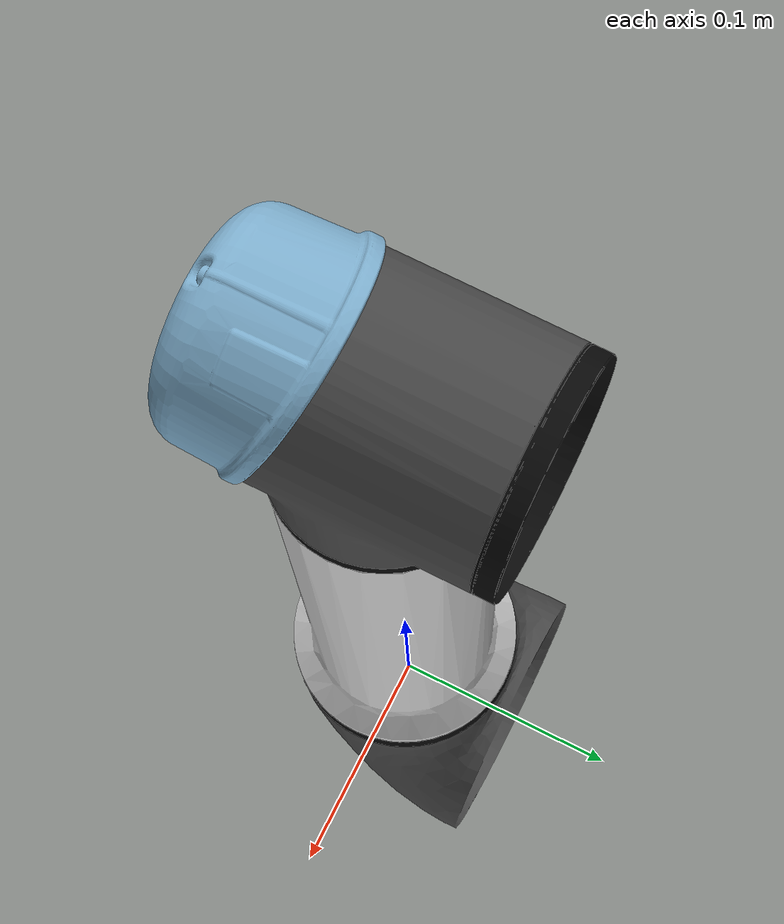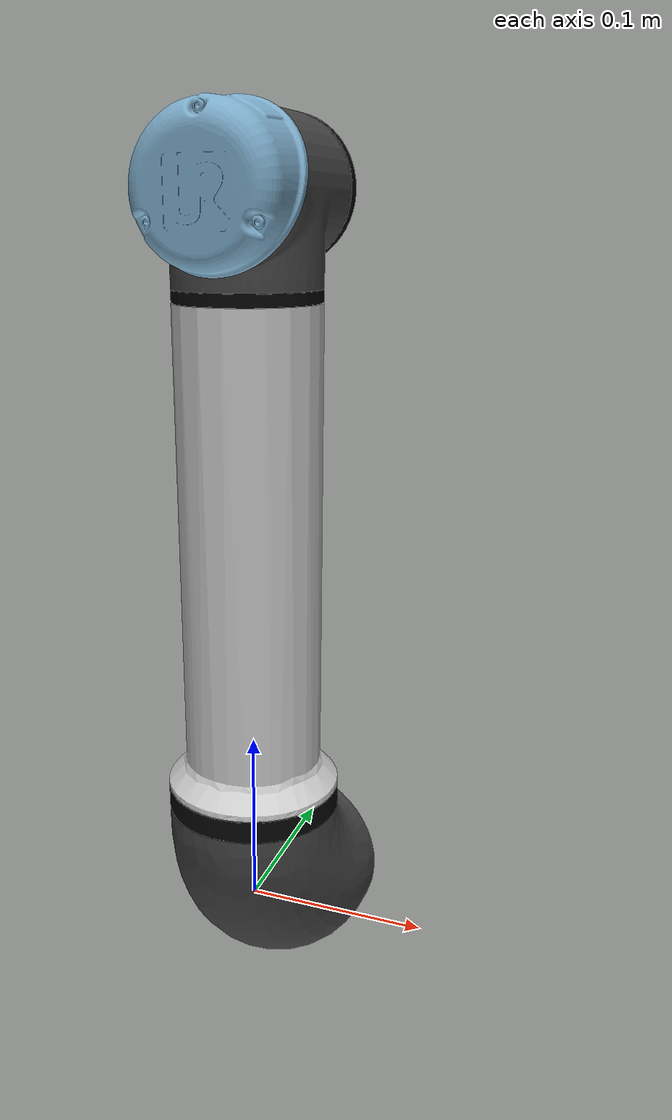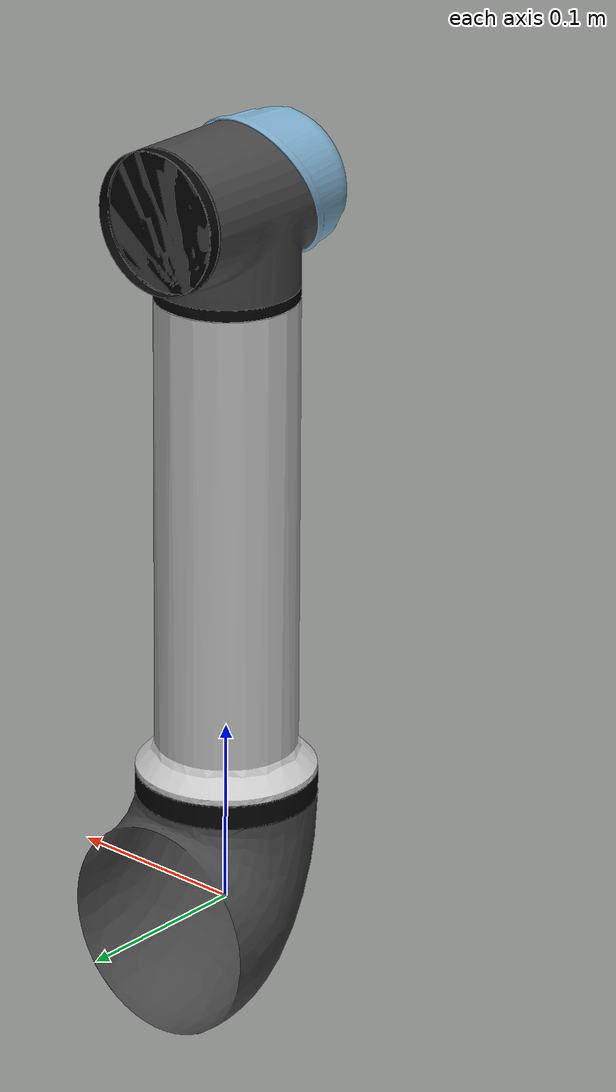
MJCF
<mujoco model="forearm">
  <default>
    <default class="visual">
      <geom group="2" type="mesh" contype="0" conaffinity="0"/>
    </default>
    <default class="collision">
      <geom group="3" type="mesh"/>
    </default>
  </default>
  <asset>
    <material name="material_forearm_0" specular="0.20000000000000004" shininess="1.0" rgba="0.27843137 0.27843137 0.27843137 1.0"/>
    <material name="material_forearm_1" specular="0.20000000000000004" shininess="1.0" rgba="0.03137255 0.03137255 0.03137255 1.0"/>
    <material name="material_forearm_2" specular="0.20000000000000004" shininess="1.0" rgba="0.81960784 0.81960784 0.81960784 1.0"/>
    <material name="material_forearm_3" specular="0.20000000000000004" shininess="1.0" rgba="0.49019608 0.67843137 0.80000000 1.0"/>
    <mesh file="forearm_0.obj"/>
    <mesh file="forearm_1.obj"/>
    <mesh file="forearm_2.obj"/>
    <mesh file="forearm_3.obj"/>
  </asset>
  <worldbody>
    <body name="forearm">
      <geom mesh="forearm_0" material="material_forearm_3" class="visual"/>
      <geom mesh="forearm_1" material="material_forearm_2" class="visual"/>
      <geom mesh="forearm_2" material="material_forearm_1" class="visual"/>
      <geom mesh="forearm_3" material="material_forearm_0" class="visual"/>
      <geom mesh="forearm_0" class="collision"/>
      <geom mesh="forearm_1" class="collision"/>
      <geom mesh="forearm_2" class="collision"/>
      <geom mesh="forearm_3" class="collision"/>
    </body>
  </worldbody>
</mujoco>
